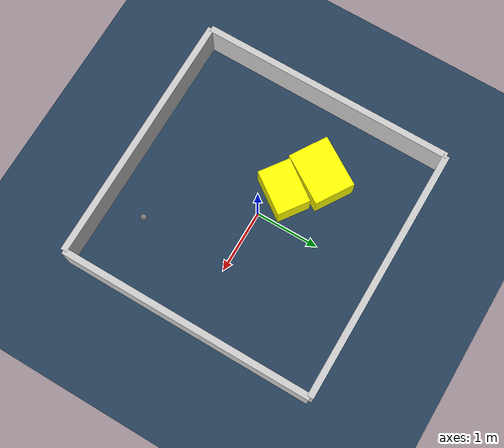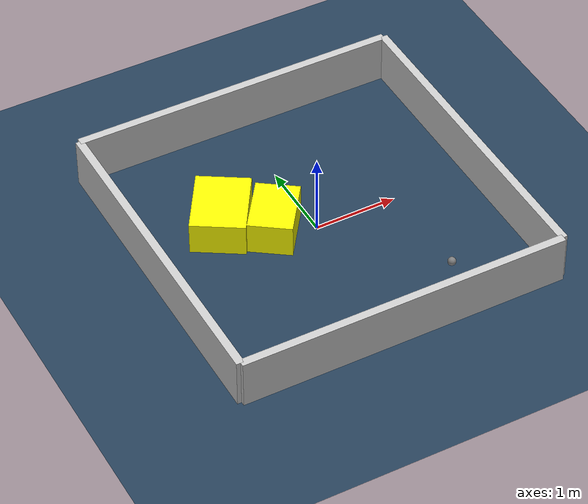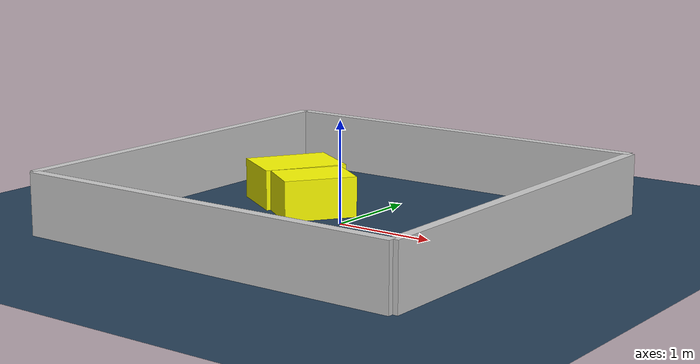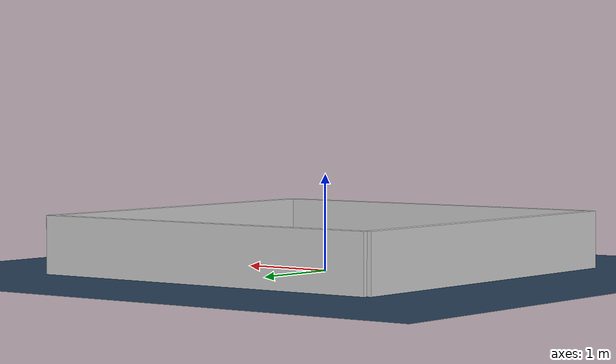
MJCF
<?xml version="1.0" ?>
<mujoco model="generated_environment">
  <option timestep="0.01" integrator="RK4" cone="elliptic"/>
  <default>
    <geom density="1"/>
  </default>
  <asset>
    <texture builtin="gradient" height="3072" rgb1="0.3 0.5 0.7" rgb2="0 0 0" type="skybox" width="512"/>
    <texture builtin="checker" height="300" mark="edge" markrgb="0.8 0.8 0.8" name="groundplane" rgb1="0.2 0.3 0.4" rgb2="0.1 0.2 0.3" type="2d" width="300"/>
    <material name="groundplane" reflectance="0.2" texrepeat="5 5" texture="groundplane" texuniform="true"/>
    <material name="robot" rgba="0.0 1.0 0.0 1"/>
  </asset>
  <worldbody>
    <light dir="0 0 -1" directional="true" pos="0 0 1.5"/>
    <geom condim="4" friction="1.0 0.005 0.001" material="groundplane" name="floor" size="0 0 0.05" type="plane"/>
    <body name="walls">
      <geom name="wall_1" condim="4" pos="-2.0 0.0 0.3" rgba="0.800000011920929 0.800000011920929 0.800000011920929 1.0" size="0.05 2.0 0.3" type="box"/>
      <geom name="wall_2" condim="4" pos="2.0 0.0 0.3" rgba="0.800000011920929 0.800000011920929 0.800000011920929 1.0" size="0.05 2.0 0.3" type="box"/>
      <geom name="wall_3" condim="4" pos="0.0 -2.0 0.3" rgba="0.800000011920929 0.800000011920929 0.800000011920929 1.0" size="2.0 0.05 0.3" type="box"/>
      <geom name="wall_4" condim="4" pos="0.0 2.0 0.3" rgba="0.800000011920929 0.800000011920929 0.800000011920929 1.0" size="2.0 0.05 0.3" type="box"/>
    </body>
    <body name="robot">
      <joint name="joint_x" type="slide" pos="0 0 0" axis="1 0 0"/>
      <joint name="joint_y" type="slide" pos="0 0 0" axis="0 1 0"/>
      <geom name="robot" type="sphere" pos="0.9518492169728132 -1.3843292391971085 0.2" size="0.05" mass="5." friction="1.0 0.005 0.0001" condim="4"/>
      <site name="sensor_ball"/>
    </body>
    <body name="obstacle_1_movable">
      <geom name="obstacle_1_movable" condim="4" pos="-0.952355553899349 0.5192937166103722 0.2" euler="0 0 148.00761372419586" friction="1.0 0.005 0.001" rgba="1 1 0 1" size="0.3215859359370373 0.4194940930243245 0.2" type="box" mass="0.1"/>
      <joint type="free"/>
    </body>
    <body name="obstacle_2_movable">
      <geom name="obstacle_2_movable" condim="4" pos="-0.45601532915803844 0.17068668795675457 0.2" euler="0 0 54.47689268199621" friction="1.0 0.005 0.001" rgba="1 1 0 1" size="0.36031551505702225 0.26025169453848573 0.2" type="box" mass="0.1"/>
      <joint type="free"/>
    </body>
  </worldbody>
  <actuator>
    <motor name="actuator_x" joint="joint_x" gear="1" ctrlrange="-1 1"/>
    <motor name="actuator_y" joint="joint_y" gear="1" ctrlrange="-1 1"/>
  </actuator>
</mujoco>
